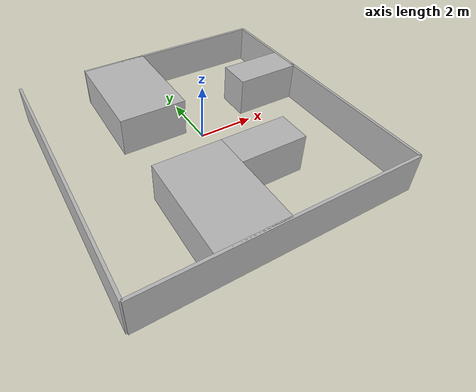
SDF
<?xml version="1.0" ?>
<sdf version="1.4">
  <model name="utokyo_walls01">
    <static>true</static>

    <link name="wall">

      <collision name="wall01-entrance">
        <pose>0 5 0 0 0 0</pose>
        <geometry>
          <box>
            <size>10 .1 1.5</size>
          </box>
        </geometry>
      </collision>
      <visual name="wall01-entrance">
        <pose>1.25 5 0 0 0 0</pose>
        <geometry>
          <box>
            <size>7.5 .1 1.5</size>
          </box>
        </geometry>
      </visual>

      <collision name="wall02">
        <pose>5 0 0 0 0 1.570796</pose>
        <geometry>
          <box>
            <size>10 .1 1.5</size>
          </box>
        </geometry>
      </collision>
      <visual name="wall02">
        <pose>5 0 0 0 0 1.570796</pose>
        <geometry>
          <box>
            <size>10 .1 1.5</size>
          </box>
        </geometry>
      </visual>

      <collision name="wall03">
        <pose>0 -5 0 0 0 0</pose>
        <geometry>
          <box>
            <size>10 .1 1.5</size>
          </box>
        </geometry>
      </collision>
      <visual name="wall03">
        <pose>0 -5 0 0 0 0</pose>
        <geometry>
          <box>
            <size>10 .1 1.5</size>
          </box>
        </geometry>
      </visual>

      <collision name="wall04">
        <pose>-5 0 0 0 0 1.570796</pose>
        <geometry>
          <box>
            <size>10 .1 1.5</size>
          </box>
        </geometry>
      </collision>
      <visual name="wall04">
        <pose>-5 0 0 0 0 1.570796</pose>
        <geometry>
          <box>
            <size>10 .1 1.5</size>
          </box>
        </geometry>
      </visual>

    </link>

    <link name="block">

      <collision name="block01">
        <pose>-1.25 3.125 0 0 0 0</pose>
        <geometry>
          <box>
            <size>2.5 3.75 1.5</size>
          </box>
        </geometry>
      </collision>
      <visual name="block01">
        <pose>-1.25 3.125 0 0 0 0</pose>
        <geometry>
          <box>
            <size>2.5 3.75 1.5</size>
          </box>
        </geometry>
      </visual>

      <collision name="block02">
        <pose>3.75 1.875 0 0 0 0</pose>
        <geometry>
          <box>
            <size>2.5 1.25 1.5</size>
          </box>
        </geometry>
      </collision>
      <visual name="block02">
        <pose>3.75 1.875 0 0 0 0</pose>
        <geometry>
          <box>
            <size>2.5 1.25 1.5</size>
          </box>
        </geometry>
      </visual>

      <collision name="block03">
        <pose>1.25 -1.875 0 0 0 0</pose>
        <geometry>
          <box>
            <size>2.5 1.25 1.5</size>
          </box>
        </geometry>
      </collision>
      <visual name="block03">
        <pose>1.25 -1.875 0 0 0 0</pose>
        <geometry>
          <box>
            <size>2.5 1.25 1.5</size>
          </box>
        </geometry>
      </visual>

      <collision name="block04">
        <pose>-1.25 -3.125 0 0 0 0</pose>
        <geometry>
          <box>
            <size>2.5 3.75 1.5</size>
          </box>
        </geometry>
      </collision>
      <visual name="block04">
        <pose>-1.25 -3.125 0 0 0 0</pose>
        <geometry>
          <box>
            <size>2.5 3.75 1.5</size>
          </box>
        </geometry>
      </visual>

    </link>

  </model>
</sdf>
